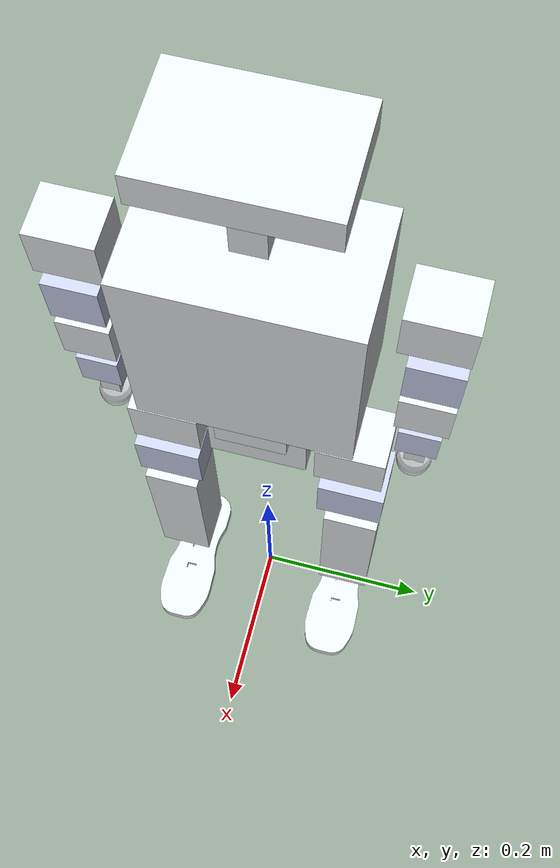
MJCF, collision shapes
<mujoco model="hi_12dof">
  <compiler angle="radian" meshdir="meshes/"/>
  <statistic meansize="0.144785" extent="1.23314" center="0.025392 2.0634e-05 -0.245975"/>
  <default>
    <joint damping="0.001" armature="0.01" frictionloss="0.08"/>
  </default>

  <asset>
    <mesh name="base_link" file="base_link.STL"/>
    <mesh name="l_hip_pitch_link" file="l_hip_pitch_link.STL"/>
    <mesh name="l_hip_roll_link" file="l_hip_roll_link.STL"/>
    <mesh name="l_hip_thigh_link" file="l_hip_thigh_link.STL"/>
    <mesh name="l_hip_calf_link" file="l_hip_calf_link.STL"/>
    <mesh name="l_ankle_pitch_link" file="l_ankle_pitch_link.STL"/>
    <mesh name="l_ankle_roll_link" file="l_ankle_roll_link.STL"/>
    <mesh name="ankle_roll_simplify" file="ankle_roll_simplify.STL" scale="0.001 0.001 0.001"/>
    <mesh name="r_hip_pitch_link" file="r_hip_pitch_link.STL"/>
    <mesh name="r_hip_roll_link" file="r_hip_roll_link.STL"/>
    <mesh name="r_hip_thigh_link" file="r_hip_thigh_link.STL"/>
    <mesh name="r_hip_calf_link" file="r_hip_calf_link.STL"/>
    <mesh name="r_ankle_pitch_link" file="r_ankle_pitch_link.STL"/>
    <mesh name="r_ankle_roll_link" file="r_ankle_roll_link.STL"/>
    <mesh name="waist_yaw_link" file="waist_yaw_link.STL"/>
    <mesh name="l_shoulder_pitch_link" file="l_shoulder_pitch_link.STL"/>
    <mesh name="l_shoulder_roll_link" file="l_shoulder_roll_link.STL"/>
    <mesh name="l_upper_arm_link" file="l_upper_arm_link.STL"/>
    <mesh name="l_elbow_link" file="l_elbow_link.STL"/>
    <mesh name="l_wrist_link" file="l_wrist_link.STL"/>
    <mesh name="r_shoulder_pitch_link" file="r_shoulder_pitch_link.STL"/>
    <mesh name="r_shoulder_roll_link" file="r_shoulder_roll_link.STL"/>
    <mesh name="r_upper_arm_link" file="r_upper_arm_link.STL"/>
    <mesh name="r_elbow_link" file="r_elbow_link.STL"/>
    <mesh name="r_wrist_link" file="r_wrist_link.STL"/>
    <mesh name="head_yaw_link" file="head_yaw_link.STL"/>
    <mesh name="head_pitch_link" file="head_pitch_link.STL"/>
  </asset>

  <worldbody>
    <body name="base_link" pos="0 0 0.47">
      <inertial pos="-0.00501504 -0.0239609 0.11686" quat="0.394114 0.911959 0.113941 -0.00475485" mass="10.3302" diaginertia="0.226368 0.193179 0.123846"/>
      <joint name="floating_base_joint" type="free"/>
      <geom type="mesh" contype="0" conaffinity="0" group="1" density="0" rgba="0.89804 0.91765 0.92941 1" mesh="base_link"/>
      <geom size="0.025 0.05 0.0325" pos="0 0 -0.04" type="box" rgba="0.89804 0.91765 0.92941 1"/>
      <geom pos="0 0 0.028" type="mesh" contype="0" conaffinity="0" group="1" density="0" rgba="0.89804 0.91765 0.92941 1" mesh="waist_yaw_link"/>
      <geom size="0.045 0.035 0.025" pos="0 0 0.028" type="box" rgba="0.89804 0.91765 0.92941 1"/>
      <geom size="0.06 0.1 0.105" pos="0 0 0.168" type="box" rgba="0.89804 0.91765 0.92941 1"/>
      <geom pos="0 0.0958 0.233" quat="1 0 0 0" type="mesh" contype="0" conaffinity="0" group="1" density="0" rgba="0.89804 0.91765 0.92941 1" mesh="l_shoulder_pitch_link"/>
      <geom size="0.025 0.03 0.025" pos="0 0.1488 0.233" type="box" rgba="0.89804 0.91765 0.92941 1"/>
      <geom pos="0 0.15355 0.233" quat="1 0 0 0" type="mesh" contype="0" conaffinity="0" group="1" density="0" rgba="0.79216 0.81961 0.93333 1" mesh="l_shoulder_roll_link"/>
      <geom size="0.025 0.025 0.025" pos="0 0.15355 0.163" type="box" rgba="0.79216 0.81961 0.93333 1"/>
      <geom pos="0 0.1533 0.16165" quat="1 0 0 0" type="mesh" contype="0" conaffinity="0" group="1" density="0" rgba="0.89804 0.91765 0.92941 1" mesh="l_upper_arm_link"/>
      <geom size="0.025 0.025 0.025" pos="0 0.1533 0.10165" type="box" rgba="0.89804 0.91765 0.92941 1"/>
      <geom pos="0 0.1533 0.1013" type="mesh" contype="0" conaffinity="0" group="1" density="0" rgba="0.79216 0.81961 0.93333 1" mesh="l_elbow_link"/>
      <geom size="0.02 0.02 0.02" pos="0 0.1533 0.0363" type="box" rgba="0.79216 0.81961 0.93333 1"/>
      <geom pos="0 0.1533 0.0346" type="mesh" contype="0" conaffinity="0" group="1" density="0" rgba="0.89804 0.91765 0.92941 1" mesh="l_wrist_link"/>
      <geom size="0.01 0.01 0.0125" pos="0 0.1533 -0.0084" type="box" rgba="0.89804 0.91765 0.92941 1"/>
      <geom name="end_collision" size="0.0175" pos="0 0.1533 -0.0374" rgba="0.89804 0.91765 0.92941 1"/>
      <geom pos="0 -0.0958 0.233" quat="1 0 0 0" type="mesh" contype="0" conaffinity="0" group="1" density="0" rgba="0.89804 0.91765 0.92941 1" mesh="r_shoulder_pitch_link"/>
      <geom size="0.025 0.03 0.025" pos="0 -0.1488 0.233" type="box" rgba="0.89804 0.91765 0.92941 1"/>
      <geom pos="0 -0.15355 0.233" quat="1 0 0 0" type="mesh" contype="0" conaffinity="0" group="1" density="0" rgba="0.79216 0.81961 0.93333 1" mesh="r_shoulder_roll_link"/>
      <geom size="0.025 0.025 0.025" pos="0 -0.15355 0.163" type="box" rgba="0.79216 0.81961 0.93333 1"/>
      <geom pos="0 -0.1533 0.16165" quat="1 0 0 0" type="mesh" contype="0" conaffinity="0" group="1" density="0" rgba="0.89804 0.91765 0.92941 1" mesh="r_upper_arm_link"/>
      <geom size="0.025 0.025 0.025" pos="0 -0.1533 0.10165" type="box" rgba="0.89804 0.91765 0.92941 1"/>
      <geom pos="0 -0.1533 0.1013" type="mesh" contype="0" conaffinity="0" group="1" density="0" rgba="0.79216 0.81961 0.93333 1" mesh="r_elbow_link"/>
      <geom size="0.02 0.02 0.02" pos="0 -0.1533 0.0363" type="box" rgba="0.79216 0.81961 0.93333 1"/>
      <geom pos="0 -0.1533 0.0346" type="mesh" contype="0" conaffinity="0" group="1" density="0" rgba="0.89804 0.91765 0.92941 1" mesh="r_wrist_link"/>
      <geom size="0.01 0.01 0.0125" pos="0 -0.1533 -0.0084" type="box" rgba="0.89804 0.91765 0.92941 1"/>
      <geom size="0.0175" pos="0 -0.1533 -0.0374" rgba="0.89804 0.91765 0.92941 1"/>
      <geom pos="0 0 0.31205" type="mesh" contype="0" conaffinity="0" group="1" density="0" rgba="0.89804 0.91765 0.92941 1" mesh="head_yaw_link"/>
      <geom size="0.015 0.015 0.015" pos="0 0 0.29705" type="box" rgba="0.89804 0.91765 0.92941 1"/>
      <geom pos="0 0.0015 0.3556" quat="1 0 0 0" type="mesh" contype="0" conaffinity="0" group="1" density="0" rgba="0.89804 0.91765 0.92941 1" mesh="head_pitch_link"/>
      <geom size="0.05 0.075 0.015" pos="0 0.0015 0.3806" type="box" rgba="0.89804 0.91765 0.92941 1"/>
      <body name="l_hip_pitch_link" pos="0 0.0295 -0.04">
        <inertial pos="0.0003884 0.067835 8.28e-05" quat="0.556493 0.438278 -0.560847 0.428578" mass="0.66505" diaginertia="0.000223908 0.000192604 0.000189288"/>
        <joint name="l_hip_pitch_joint" pos="0 0 0" axis="0 1 0" range="-3.0369 3.0369" actuatorfrcrange="-32.4 32.4"/>
        <geom type="mesh" contype="0" conaffinity="0" group="1" density="0" rgba="0.89804 0.91765 0.92941 1" mesh="l_hip_pitch_link"/>
        <geom size="0.03 0.035 0.03" pos="0 0.065 0" type="box" rgba="0.89804 0.91765 0.92941 1"/>
        <body name="l_hip_roll_link" pos="0 0.07 0">
          <inertial pos="0.0009598 0.0001312 -0.081116" quat="0.70836 0.0236484 0.0227625 0.705088" mass="0.78331" diaginertia="0.00146241 0.00126332 0.000491778"/>
          <joint name="l_hip_roll_joint" pos="0 0 0" axis="1 0 0" range="-0.45379 2.618" actuatorfrcrange="-32.4 32.4"/>
          <geom type="mesh" contype="0" conaffinity="0" group="1" density="0" rgba="0.79216 0.81961 0.93333 1" mesh="l_hip_roll_link"/>
          <geom size="0.03 0.035 0.03" pos="0 0 -0.09" type="box" rgba="0.79216 0.81961 0.93333 1"/>
          <body name="l_hip_thigh_link" pos="0 0 -0.095">
            <inertial pos="0 -0.00080909 -0.059296" quat="0.588254 0.808676 0 0" mass="0.24756" diaginertia="0.0003962 0.000271392 0.000245108"/>
            <joint name="l_hip_thigh_joint" pos="0 0 0" axis="0 0 1" range="-0.7854 0.7854" actuatorfrcrange="-32.4 32.4"/>
            <geom type="mesh" contype="0" conaffinity="0" group="1" density="0" rgba="0.89804 0.91765 0.92941 1" mesh="l_hip_thigh_link"/>
            <geom size="0.005 0.005 0.005" pos="0 0 -0.005" type="box" rgba="0.89804 0.91765 0.92941 1"/>
            <body name="l_hip_calf_link" pos="0 0.00375 -0.097">
              <inertial pos="0.0010123 -0.0024674 -0.064494" quat="0.749749 -0.0135581 0.00418962 0.66157" mass="1.6427" diaginertia="0.00606559 0.00600124 0.000543567"/>
              <joint name="l_hip_calf_joint" pos="0 0 0" axis="0 1 0" range="-1.5708 2.0944" actuatorfrcrange="-32.4 32.4"/>
              <geom type="mesh" contype="0" conaffinity="0" group="1" density="0" rgba="0.89804 0.91765 0.92941 1" mesh="l_hip_calf_link"/>
              <geom size="0.03 0.03 0.105" pos="0 0 -0.06" type="box" rgba="0.89804 0.91765 0.92941 1"/>
              <body name="l_ankle_pitch_link" pos="0 -0.00375 -0.19945">
                <inertial pos="0 0 0" quat="0.5 0.5 -0.5 0.5" mass="0.056538" diaginertia="6.3e-06 4.9e-06 4.7e-06"/>
                <joint name="l_ankle_pitch_joint" pos="0 0 0" axis="0 1 0" range="-0.90757 0.7854" actuatorfrcrange="-14.4 14.4"/>
                <geom type="mesh" contype="0" conaffinity="0" group="1" density="0" rgba="0.89804 0.91765 0.92941 1" mesh="l_ankle_pitch_link"/>
                <geom size="0.005 0.005 0.005" type="box" rgba="0.89804 0.91765 0.92941 1"/>
                <body name="l_ankle_roll_link">
                  <inertial pos="0.017291 0.00079987 -0.030752" quat="-0.0717589 0.724448 -0.0777767 0.681158" mass="0.59911" diaginertia="0.00144003 0.00137984 0.000239531"/>
                  <joint name="l_ankle_roll_joint" pos="0 0 0" axis="1 0 0" range="-0.37525 0.37525" actuatorfrcrange="-14.4 14.4"/>
                  <geom type="mesh" contype="0" conaffinity="0" group="1" density="0" rgba="0.89804 0.91765 0.92941 1" mesh="l_ankle_roll_link"/>
                  <geom pos="-0.067 0.033 -0.044" quat="0.707388 0 0 -0.706825" type="mesh" rgba="0.89804 0.91765 0.92941 1" mesh="ankle_roll_simplify"/>
                </body>
              </body>
            </body>
          </body>
        </body>
      </body>
      <body name="r_hip_pitch_link" pos="0 -0.0295 -0.04">
        <inertial pos="0.0003884 -0.067835 -8.28e-05" quat="0.428578 0.560847 -0.438278 0.556493" mass="0.66505" diaginertia="0.000223908 0.000192604 0.000189288"/>
        <joint name="r_hip_pitch_joint" pos="0 0 0" axis="0 1 0" range="-3.0369 3.0369" actuatorfrcrange="-32.4 32.4"/>
        <geom type="mesh" contype="0" conaffinity="0" group="1" density="0" rgba="0.89804 0.91765 0.92941 1" mesh="r_hip_pitch_link"/>
        <geom size="0.03 0.035 0.03" pos="0 -0.065 0" type="box" rgba="0.89804 0.91765 0.92941 1"/>
        <body name="r_hip_roll_link" pos="0 -0.07 0">
          <inertial pos="0.0009598 -0.0001312 -0.081116" quat="0.708631 0.0226903 0.0237133 0.704816" mass="0.78331" diaginertia="0.00146241 0.00126331 0.000491779"/>
          <joint name="r_hip_roll_joint" pos="0 0 0" axis="1 0 0" range="-2.618 0.45379" actuatorfrcrange="-32.4 32.4"/>
          <geom type="mesh" contype="0" conaffinity="0" group="1" density="0" rgba="0.79216 0.81961 0.93333 1" mesh="r_hip_roll_link"/>
          <geom size="0.03 0.035 0.03" pos="0 0 -0.09" type="box" rgba="0.79216 0.81961 0.93333 1"/>
          <body name="r_hip_thigh_link" pos="0 0 -0.095">
            <inertial pos="0 0.00080909 -0.059296" quat="0.808676 0.588254 0 0" mass="0.24756" diaginertia="0.0003962 0.000271392 0.000245108"/>
            <joint name="r_hip_thigh_joint" pos="0 0 0" axis="0 0 1" range="-0.7854 0.7854" actuatorfrcrange="-32.4 32.4"/>
            <geom type="mesh" contype="0" conaffinity="0" group="1" density="0" rgba="0.89804 0.91765 0.92941 1" mesh="r_hip_thigh_link"/>
            <geom size="0.005 0.005 0.005" pos="0 0 -0.005" type="box" rgba="0.89804 0.91765 0.92941 1"/>
            <body name="r_hip_calf_link" pos="0 -0.00375 -0.097">
              <inertial pos="0.0010123 0.0024674 -0.064494" quat="0.66157 0.00418962 -0.0135581 0.749749" mass="1.6427" diaginertia="0.00606559 0.00600124 0.000543567"/>
              <joint name="r_hip_calf_joint" pos="0 0 0" axis="0 1 0" range="-1.5708 2.0944" actuatorfrcrange="-32.4 32.4"/>
              <geom type="mesh" contype="0" conaffinity="0" group="1" density="0" rgba="0.89804 0.91765 0.92941 1" mesh="r_hip_calf_link"/>
              <geom size="0.03 0.03 0.105" pos="0 0 -0.06" type="box" rgba="0.89804 0.91765 0.92941 1"/>
              <body name="r_ankle_pitch_link" pos="0 0.00375 -0.19945">
                <inertial pos="0 0 0" quat="0.5 0.5 -0.5 0.5" mass="0.056538" diaginertia="6.3e-06 4.9e-06 4.7e-06"/>
                <joint name="r_ankle_pitch_joint" pos="0 0 0" axis="0 1 0" range="-0.90757 0.7854" actuatorfrcrange="-14.4 14.4"/>
                <geom type="mesh" contype="0" conaffinity="0" group="1" density="0" rgba="0.89804 0.91765 0.92941 1" mesh="r_ankle_pitch_link"/>
                <geom size="0.005 0.005 0.005" type="box" rgba="0.89804 0.91765 0.92941 1"/>
                <body name="r_ankle_roll_link">
                  <inertial pos="0.017291 -0.00079987 -0.030725" quat="0.0717589 0.724448 0.0777767 0.681158" mass="0.59911" diaginertia="0.00144003 0.00137984 0.000239531"/>
                  <joint name="r_ankle_roll_joint" pos="0 0 0" axis="1 0 0" range="-0.37525 0.37525" actuatorfrcrange="-14.4 14.4"/>
                  <geom type="mesh" contype="0" conaffinity="0" group="1" density="0" rgba="0.89804 0.91765 0.92941 1" mesh="r_ankle_roll_link"/>
                  <geom pos="-0.067 0.033 -0.044" quat="0.707388 0 0 -0.706825" type="mesh" rgba="0.89804 0.91765 0.92941 1" mesh="ankle_roll_simplify"/>
                </body>
              </body>
            </body>
          </body>
        </body>
      </body>
    </body>
  </worldbody>

  <actuator>
    <motor name="l_hip_pitch_joint" joint="l_hip_pitch_joint"/>
    <motor name="l_hip_roll_joint" joint="l_hip_roll_joint"/>
    <motor name="l_hip_thigh_joint" joint="l_hip_thigh_joint"/>
    <motor name="l_hip_calf_joint" joint="l_hip_calf_joint"/>
    <motor name="l_ankle_pitch_joint" joint="l_ankle_pitch_joint"/>
    <motor name="l_ankle_roll_joint" joint="l_ankle_roll_joint"/>

    <motor name="r_hip_pitch_joint" joint="r_hip_pitch_joint"/>
    <motor name="r_hip_roll_joint" joint="r_hip_roll_joint"/>
    <motor name="r_hip_thigh_joint" joint="r_hip_thigh_joint"/>
    <motor name="r_hip_calf_joint" joint="r_hip_calf_joint"/>
    <motor name="r_ankle_pitch_joint" joint="r_ankle_pitch_joint"/>
    <motor name="r_ankle_roll_joint" joint="r_ankle_roll_joint"/>
  </actuator>
</mujoco>
